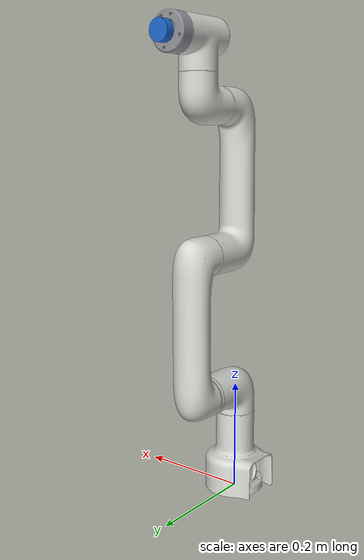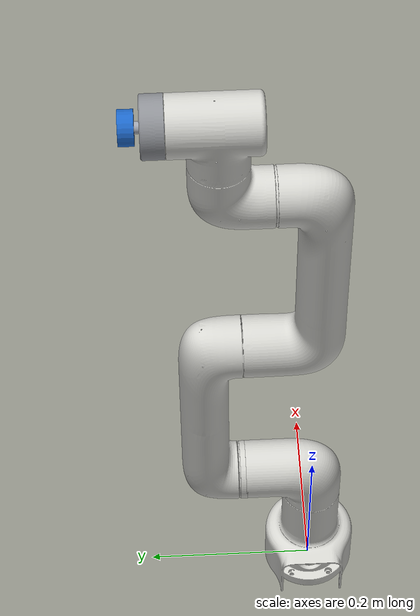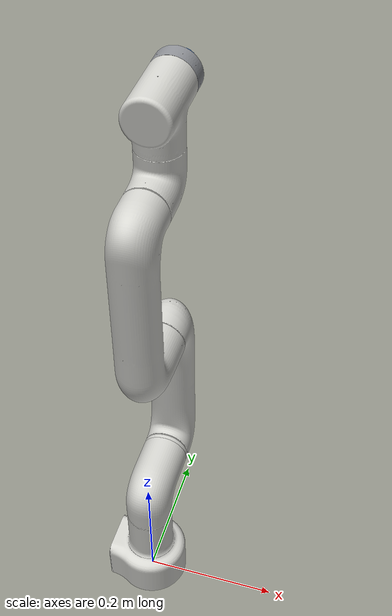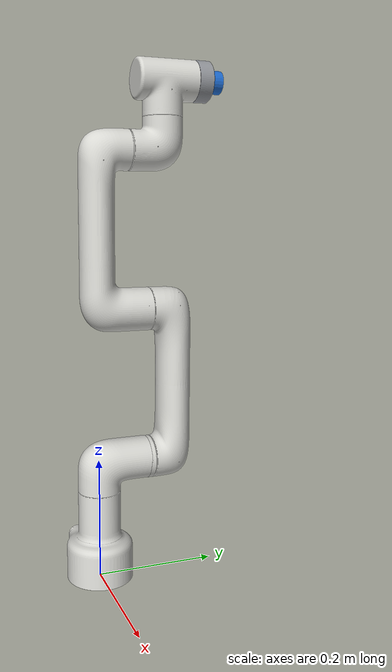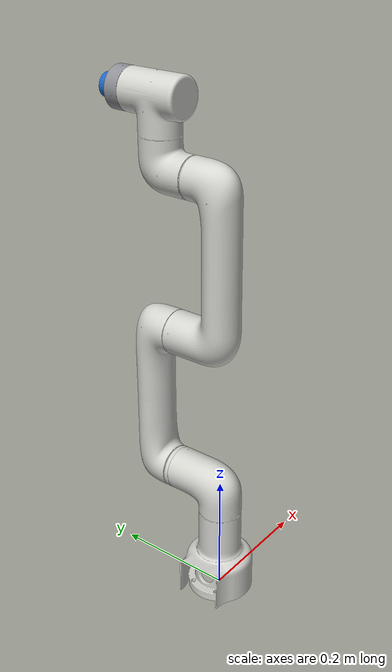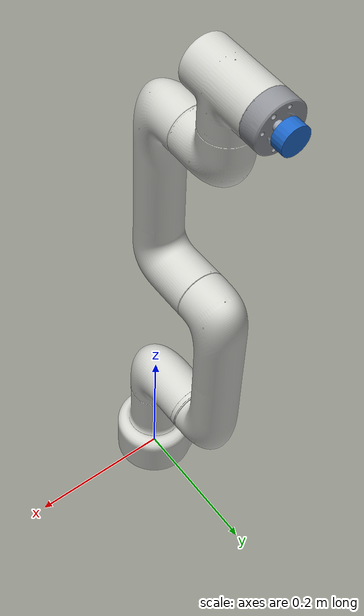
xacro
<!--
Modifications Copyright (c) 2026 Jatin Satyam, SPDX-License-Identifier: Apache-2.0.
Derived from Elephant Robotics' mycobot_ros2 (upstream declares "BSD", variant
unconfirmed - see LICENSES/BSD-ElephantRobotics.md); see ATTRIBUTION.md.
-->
<?xml version="1.0"?>
<robot xmlns:xacro="http://www.ros.org/wiki/xacro" name="mycobot_pro600">

  <xacro:include filename="$(find mycobot_pro600_description)/urdf/inertial_macros.xacro"/>

  <xacro:arg name="prefix" default="pro600_"/>
  <xacro:property name="prefix" value="$(arg prefix)"/>

  <xacro:arg name="fix_to_world" default="true"/>
  <xacro:arg name="use_gz_control" default="true"/>
  <xacro:arg name="controllers_file"
             default="$(find mycobot_pro600_description)/config/pro600_controllers.yaml"/>

  <xacro:property name="mesh_dir" value="package://mycobot_pro600_description/meshes"/>

  <!-- ===== manufacturer joint limits (rad) ===== -->
  <xacro:property name="j1_lo" value="-3.1400"/>  <xacro:property name="j1_hi" value="3.14159"/>
  <xacro:property name="j2_lo" value="-4.7123"/>  <xacro:property name="j2_hi" value="1.5708"/>
  <xacro:property name="j3_lo" value="-2.6179"/>  <xacro:property name="j3_hi" value="2.6179"/>
  <xacro:property name="j4_lo" value="-4.5378"/>  <xacro:property name="j4_hi" value="1.3962"/>
  <xacro:property name="j5_lo" value="-2.9321"/>  <xacro:property name="j5_hi" value="2.9321"/>
  <xacro:property name="j6_lo" value="-3.0368"/>  <xacro:property name="j6_hi" value="3.0368"/>

  <xacro:property name="eff"  value="1000.0"/>
  <xacro:property name="vel"  value="2.0"/>

  <!-- masses apportioned to the Pro 600's ~22 kg published weight -->
  <xacro:property name="m_base"  value="8.0"/>
  <xacro:property name="m_l1"    value="4.0"/>
  <xacro:property name="m_l2"    value="4.0"/>
  <xacro:property name="m_l3"    value="2.5"/>
  <xacro:property name="m_l4"    value="1.5"/>
  <xacro:property name="m_l5"    value="1.2"/>
  <xacro:property name="m_l6"    value="0.8"/>

  <xacro:if value="$(arg fix_to_world)">
    <link name="world"/>
    <joint name="${prefix}world_fixed" type="fixed">
      <parent link="world"/><child link="${prefix}base"/>
      <origin xyz="0 0 0"/>
    </joint>
  </xacro:if>

  <!-- ==================== links ==================== -->
  <link name="${prefix}base">
    <visual>
      <origin xyz="0 0 0" rpy="0 0 0"/>
      <geometry><mesh filename="${mesh_dir}/base.stl"/></geometry>
      <material name="pro600_body"><color rgba="0.82 0.82 0.80 1"/></material>
    </visual>
    <collision>
      <origin xyz="0 0 0.10"/>
      <geometry><cylinder radius="0.090" length="0.200"/></geometry>
    </collision>
    <xacro:inertial_cylinder mass="${m_base}" radius="0.090" length="0.200">
      <origin xyz="0 0 0.10"/>
    </xacro:inertial_cylinder>
  </link>

  <link name="${prefix}link1">
    <visual>
      <origin xyz="0 0 0" rpy="0 0 3.1415926"/>
      <geometry><mesh filename="${mesh_dir}/link1.stl"/></geometry>
      <material name="pro600_body"><color rgba="0.82 0.82 0.80 1"/></material>
    </visual>
    <collision>
      <origin xyz="0 0 0"/>
      <geometry><cylinder radius="0.075" length="0.150"/></geometry>
    </collision>
    <xacro:inertial_cylinder mass="${m_l1}" radius="0.075" length="0.150">
      <origin xyz="0 0 0"/>
    </xacro:inertial_cylinder>
  </link>

  <!-- link2 and link3 run along their own +X: the next joint sits at x=0.25 -->
  <link name="${prefix}link2">
    <visual>
      <origin xyz="0 0 -0.080" rpy="3.1415926 0 3.1415926"/>
      <geometry><mesh filename="${mesh_dir}/link2.stl"/></geometry>
      <material name="pro600_body"><color rgba="0.82 0.82 0.80 1"/></material>
    </visual>
    <collision>
      <origin xyz="0.125 0 0" rpy="0 1.5708 0"/>
      <geometry><cylinder radius="0.060" length="0.250"/></geometry>
    </collision>
    <xacro:inertial_cylinder mass="${m_l2}" radius="0.060" length="0.250">
      <origin xyz="0.125 0 0" rpy="0 1.5708 0"/>
    </xacro:inertial_cylinder>
  </link>

  <link name="${prefix}link3">
    <visual>
      <origin xyz="0 0 -0.0855" rpy="3.1415926 0 3.1415926"/>
      <geometry><mesh filename="${mesh_dir}/link3.stl"/></geometry>
      <material name="pro600_body"><color rgba="0.82 0.82 0.80 1"/></material>
    </visual>
    <collision>
      <origin xyz="0.125 0 -0.055" rpy="0 1.5708 0"/>
      <geometry><cylinder radius="0.050" length="0.250"/></geometry>
    </collision>
    <xacro:inertial_cylinder mass="${m_l3}" radius="0.050" length="0.250">
      <origin xyz="0.125 0 -0.055" rpy="0 1.5708 0"/>
    </xacro:inertial_cylinder>
  </link>

  <link name="${prefix}link4">
    <visual>
      <origin xyz="0 0 0" rpy="0 3.1415926 0"/>
      <geometry><mesh filename="${mesh_dir}/link4.stl"/></geometry>
      <material name="pro600_body"><color rgba="0.82 0.82 0.80 1"/></material>
    </visual>
    <collision>
      <origin xyz="0 -0.054 0" rpy="1.5708 0 0"/>
      <geometry><cylinder radius="0.048" length="0.130"/></geometry>
    </collision>
    <xacro:inertial_cylinder mass="${m_l4}" radius="0.048" length="0.130">
      <origin xyz="0 -0.054 0" rpy="1.5708 0 0"/>
    </xacro:inertial_cylinder>
  </link>

  <link name="${prefix}link5">
    <visual>
      <origin xyz="0 0 0" rpy="0 0 1.5707"/>
      <geometry><mesh filename="${mesh_dir}/link5.stl"/></geometry>
      <material name="pro600_body"><color rgba="0.82 0.82 0.80 1"/></material>
    </visual>
    <collision>
      <origin xyz="-0.038 0 0" rpy="0 1.5708 0"/>
      <geometry><cylinder radius="0.045" length="0.100"/></geometry>
    </collision>
    <xacro:inertial_cylinder mass="${m_l5}" radius="0.045" length="0.100">
      <origin xyz="-0.038 0 0" rpy="0 1.5708 0"/>
    </xacro:inertial_cylinder>
  </link>

  <link name="${prefix}link6">
    <visual>
      <origin xyz="0.03 0 0" rpy="0 -1.5707 0"/>
      <geometry><mesh filename="${mesh_dir}/link6.stl"/></geometry>
      <material name="pro600_grey"><color rgba="0.55 0.56 0.58 1"/></material>
    </visual>
    <collision>
      <origin xyz="0.015 0 0" rpy="0 1.5708 0"/>
      <geometry><cylinder radius="0.032" length="0.050"/></geometry>
    </collision>
    <xacro:inertial_cylinder mass="${m_l6}" radius="0.032" length="0.050">
      <origin xyz="0.015 0 0" rpy="0 1.5708 0"/>
    </xacro:inertial_cylinder>
  </link>

  <!-- ==================== joints ==================== -->
  <joint name="${prefix}joint1" type="revolute">
    <axis xyz="0 0 1"/>
    <limit effort="${eff}" lower="${j1_lo}" upper="${j1_hi}" velocity="${vel}"/>
    <parent link="${prefix}base"/><child link="${prefix}link1"/>
    <origin xyz="0 0 0.19934" rpy="0 0 0"/>
    <dynamics damping="1.0" friction="0.5"/>
  </joint>

  <joint name="${prefix}joint2" type="revolute">
    <axis xyz="0 0 -1"/>
    <limit effort="${eff}" lower="${j2_lo}" upper="${j2_hi}" velocity="${vel}"/>
    <parent link="${prefix}link1"/><child link="${prefix}link2"/>
    <origin xyz="0 0 0" rpy="1.5708 -1.5708 0"/>
    <dynamics damping="1.0" friction="0.5"/>
  </joint>

  <joint name="${prefix}joint3" type="revolute">
    <axis xyz="0 0 -1"/>
    <limit effort="${eff}" lower="${j3_lo}" upper="${j3_hi}" velocity="${vel}"/>
    <parent link="${prefix}link2"/><child link="${prefix}link3"/>
    <origin xyz="0.25 0 0" rpy="0 0 0"/>
    <dynamics damping="1.0" friction="0.5"/>
  </joint>

  <joint name="${prefix}joint4" type="revolute">
    <axis xyz="0 0 -1"/>
    <limit effort="${eff}" lower="${j4_lo}" upper="${j4_hi}" velocity="${vel}"/>
    <parent link="${prefix}link3"/><child link="${prefix}link4"/>
    <origin xyz="0.25 0 -0.1091" rpy="0 0 1.5708"/>
    <dynamics damping="0.5" friction="0.2"/>
  </joint>

  <joint name="${prefix}joint5" type="revolute">
    <axis xyz="0 0 1"/>
    <limit effort="${eff}" lower="${j5_lo}" upper="${j5_hi}" velocity="${vel}"/>
    <parent link="${prefix}link4"/><child link="${prefix}link5"/>
    <origin xyz="0 -0.108 0" rpy="1.5708 -1.5708 0"/>
    <dynamics damping="0.5" friction="0.2"/>
  </joint>

  <joint name="${prefix}joint6" type="revolute">
    <axis xyz="-1 0 0"/>
    <limit effort="${eff}" lower="${j6_lo}" upper="${j6_hi}" velocity="${vel}"/>
    <parent link="${prefix}link5"/><child link="${prefix}link6"/>
    <origin xyz="-0.07586 0 0" rpy="-1.5708 0 0"/>
    <dynamics damping="0.3" friction="0.1"/>
  </joint>

  <!-- Tool flange face. Flange +Z is the tool approach direction. -->
  <link name="${prefix}flange"/>
  <joint name="${prefix}flange_fixed" type="fixed">
    <parent link="${prefix}link6"/><child link="${prefix}flange"/>
    <origin xyz="0.03 0 0" rpy="0 -1.5708 0"/>
  </joint>

  <link name="${prefix}cup">
    <visual>
      <origin xyz="0 0 0.0175" rpy="0 0 0"/>
      <geometry><cylinder radius="0.0060" length="0.0350"/></geometry>
      <material name="cup_steel"><color rgba="0.62 0.64 0.68 1"/></material>
    </visual>
    <visual>
      <origin xyz="0 0 0.0430" rpy="0 0 0"/>
      <geometry><cylinder radius="0.0180" length="0.0160"/></geometry>
      <material name="cup_blue"><color rgba="0.11 0.40 0.78 1"/></material>
    </visual>
    <collision>
      <origin xyz="0 0 0.0255" rpy="0 0 0"/>
      <geometry><cylinder radius="0.0180" length="0.0510"/></geometry>
    </collision>
    <inertial>
      <origin xyz="0 0 0.0300"/>
      <mass value="0.05"/>
      <inertia ixx="2.0e-5" ixy="0" ixz="0" iyy="2.0e-5" iyz="0" izz="8.0e-6"/>
    </inertial>
  </link>
  <joint name="${prefix}cup_fixed" type="fixed">
    <parent link="${prefix}flange"/><child link="${prefix}cup"/>
    <origin xyz="0 0 0"/>
  </joint>

  <!-- Grasp point: the cup lip, where the wafer is held. -->
  <link name="${prefix}cup_tip"/>
  <joint name="${prefix}cup_tip_fixed" type="fixed">
    <parent link="${prefix}cup"/><child link="${prefix}cup_tip"/>
    <origin xyz="0 0 0.0510"/>
  </joint>

  <!-- ==================== ros2_control ==================== -->
  <xacro:if value="$(arg use_gz_control)">
  <ros2_control name="${prefix}system" type="system">
    <hardware><plugin>gz_ros2_control/GazeboSimSystem</plugin></hardware>
    <xacro:macro name="j" params="name lo hi">
      <joint name="${name}">
        <command_interface name="position">
          <param name="min">${lo}</param><param name="max">${hi}</param>
        </command_interface>
        <!-- 0.0 is strictly inside every one of these ranges. Never initialise
             a joint AT a limit - it latches and then ignores all commands. -->
        <state_interface name="position"><param name="initial_value">0.0</param></state_interface>
        <state_interface name="velocity"/>
        <state_interface name="effort"/>
      </joint>
    </xacro:macro>
    <xacro:j name="${prefix}joint1" lo="${j1_lo}" hi="${j1_hi}"/>
    <xacro:j name="${prefix}joint2" lo="${j2_lo}" hi="${j2_hi}"/>
    <xacro:j name="${prefix}joint3" lo="${j3_lo}" hi="${j3_hi}"/>
    <xacro:j name="${prefix}joint4" lo="${j4_lo}" hi="${j4_hi}"/>
    <xacro:j name="${prefix}joint5" lo="${j5_lo}" hi="${j5_hi}"/>
    <xacro:j name="${prefix}joint6" lo="${j6_lo}" hi="${j6_hi}"/>
  </ros2_control>

  <gazebo>
    <plugin filename="gz_ros2_control-system"
            name="gz_ros2_control::GazeboSimROS2ControlPlugin">
      <parameters>$(arg controllers_file)</parameters>
      <ros>
        <namespace>/pro600</namespace>
      </ros>
    </plugin>
  </gazebo>
  </xacro:if>

</robot>

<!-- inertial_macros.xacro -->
<robot xmlns:xacro="http://www.ros.org/wiki/xacro">
  <xacro:macro name="inertial_box" params="mass x y z *origin">
    <inertial>
      <xacro:insert_block name="origin"/>
      <mass value="${mass}"/>
      <inertia ixx="${(mass/12.0)*(y*y + z*z)}" ixy="0.0" ixz="0.0"
               iyy="${(mass/12.0)*(x*x + z*z)}" iyz="0.0"
               izz="${(mass/12.0)*(x*x + y*y)}"/>
    </inertial>
  </xacro:macro>
  <xacro:macro name="inertial_cylinder" params="mass radius length *origin">
    <inertial>
      <xacro:insert_block name="origin"/>
      <mass value="${mass}"/>
      <inertia ixx="${(mass/12.0)*(3.0*radius*radius + length*length)}" ixy="0.0" ixz="0.0"
               iyy="${(mass/12.0)*(3.0*radius*radius + length*length)}" iyz="0.0"
               izz="${0.5*mass*radius*radius}"/>
    </inertial>
  </xacro:macro>
</robot>
